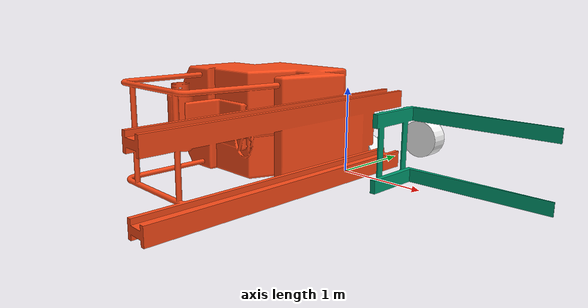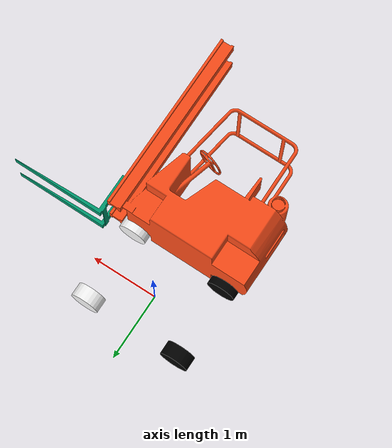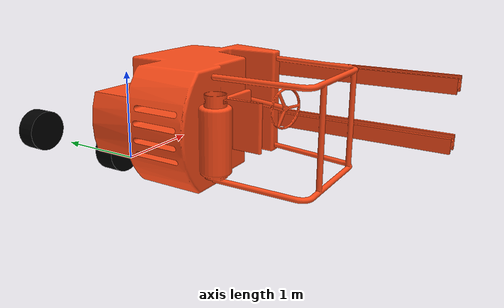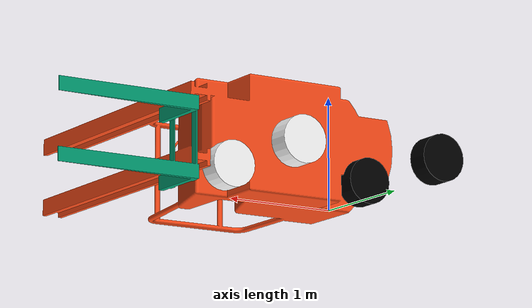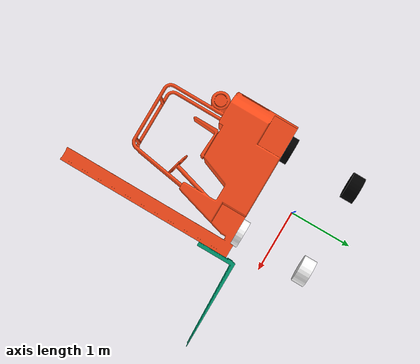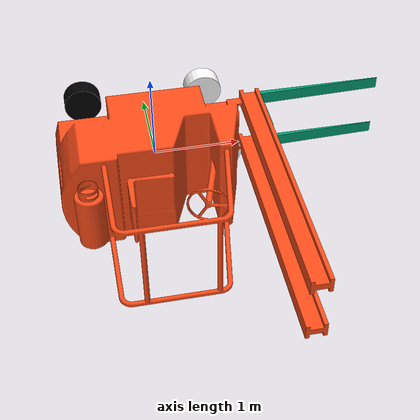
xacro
<?xml version="1.0"?>
<robot xmlns:xacro="http://www.ros.org/wiki/xacro">

    <xacro:include filename="forklift_robot_constants.xacro" />

    <!--######################### Base link ##################################### -->

    <link name="base_link">
        <visual>
        <origin xyz="-1.0795 -0.5334 0" rpy="0 0 0"/>
        <geometry>
            <mesh filename="$(find forklift_robot)/description/meshes/base_link.dae" />
        </geometry>
        <material name="orange">
        </material>
        </visual>

        <collision>
        <origin xyz="0 0 0" rpy="0 0 1.3716" /> <!-- 1.3716  make this the last digit if using mesh-->
        <geometry>
          <mesh filename="$(find forklift_robot)/description/meshes/base_link.dae" />
        </geometry>
        </collision>

        <inertial>
        <mass value="500"/>
        <inertia ixx="206" ixy="0" ixz="-23" iyy="389" iyz="0" izz="316"/>
        </inertial>

    </link>

    <gazebo reference="base_link">
        <material>Gazebo/Yellow</material>
    </gazebo>

    <!-- ######################### Base Footprint ##################################### -->
    <link name="base_footprint" />

    <!-- ######################### Base joint ##################################### -->
    <joint name="base_joint" type="fixed">
        <parent link="base_footprint"/>
        <child link="base_link" />
        <origin xyz="0.0 0.0 ${(wheel_radius+wheel_zoff)}" rpy="0 0 0"/> <!-- ${(wheel_radius+wheel_zoff)} switch the last digit to this if using meshes -->
    </joint>

    <!-- #################### Fork ########################## -->
      <link name="fork">
    <visual>
      <geometry>
        <mesh filename="$(find forklift_robot)/description/meshes/fork.dae"/>
      </geometry>
    </visual>
    <collision>
      <geometry>
        <mesh filename="$(find forklift_robot)/description/meshes/fork.dae"/>
      </geometry>
    </collision>
    <inertial>
      <mass value="10"/>
      <inertia ixx="0.2" ixy="0" ixz="0" iyy="0.3" iyz="0" izz="0.4"/>
    </inertial>
  </link>

  <joint name="base_to_fork" type="prismatic">
    <parent link="base_link"/>
    <child link="fork"/>
    <limit
      lower="0"
      upper="2"
      velocity="0.1"
      effort="100"
    />
    <origin xyz="1.0795 -0.3686 0.0"/>
    <axis xyz="0 0 1"/>
  </joint>

    <!-- ######################### Left side wheels ##################################### -->
    <xacro:wheel prefix="drivewhl_fl" x_reflect="1" y_reflect="1" />

    <xacro:steerable_wheel prefix="drivewhl_l" x="-0.7502" y="0.5684" z="0.2032"/>

    <joint name="drivewhl_fl_joint" type="continuous">
        <parent link="base_link"/>
        <child link="drivewhl_fl_link"/>
        <limit
        velocity="10"
        effort="1000"
        />
        <origin xyz="0.6722 0.5684 0.2032"/>
        <axis xyz="0 1 0"/>
    </joint>

    <!-- ######################### Right side wheels #################################### -->
    <xacro:wheel prefix="drivewhl_fr" x_reflect="1" y_reflect="-1" />

    <xacro:steerable_wheel prefix="drivewhl_r" x="-0.7502" y="-0.5684" z="0.2032"/>

    <joint name="drivewhl_fr_joint" type="continuous">
        <parent link="base_link"/>
        <child link="drivewhl_fr_link"/>
        <limit
        velocity="10"
        effort="1000"
        />
        <origin xyz="0.6722 -0.5684 0.2032"/>
        <axis xyz="0 1 0"/>
    </joint>

</robot>

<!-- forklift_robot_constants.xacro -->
<robot xmlns:xacro="http://www.ros.org/wiki/xacro">

    <!-- ######################## properties ############################ -->

    <!-- THESE ARE WRONG -->
    <xacro:property name="base_width" value="1.0668"/>
    <xacro:property name="base_length" value="2.159"/>
    <xacro:property name="base_height" value="2.7432"/>

    <!-- ####################### colors! ################### -->
    <material name="white">
        <color rgba="1 1 1 1"/>
    </material>

    <material name="black">
        <color rgba="0 0 0 1"/>
    </material>

    <material name="orange">
        <color rgba="1 0.3 0.1 1"/>
    </material>

    <material name="blue">
        <color rgba="0.2 0.2 1 1"/>
    </material>

    <!-- ############################# WHEEL STUFF ########################################### -->

    <xacro:property name="wheel_radius" value="0.21"/>
    <xacro:property name="wheel_width" value="0.2"/>

    <xacro:macro name="wheel" params="prefix x_reflect y_reflect">
      <link name="${prefix}_link">
        <visual>
          <origin xyz="0 0 0" rpy="1.5707963267949 0 0"/>
          <geometry>
              <cylinder radius="${wheel_radius}" length="${wheel_width}"/>
          </geometry>
          <material name="White">
            <color rgba="${255/255} ${255/255} ${255/255} 1.0"/>
          </material>
        </visual>

        <collision>
          <origin xyz="0 0 0" rpy="${pi/2} 0 0"/>
          <geometry>
            <cylinder radius="${wheel_radius}" length="${wheel_width}"/>
          </geometry>
        </collision>

        <xacro:cylinder_inertia m="5.5" r="${wheel_radius}" h="${wheel_width}"/>

      </link>

      <!-- Connect the wheels to the base_link at the appropriate location, and
          define a continuous joint to allow the wheels to freely rotate about
          an axis -->
    </xacro:macro>

    <!-- <><><><> STEERABLE WHEELS <><><><> -->

    <xacro:macro name="steerable_wheel" params="prefix x y z">
        <link name="${prefix}_wheel_link">
            <visual>
                <origin xyz="0 0 0" rpy="1.5707963267949 0 0"/>
                <geometry>
                    <cylinder radius="${wheel_radius}" length="${wheel_width}"/>
                </geometry>
                <material name="black"/>
            </visual>
            <collision>
              <origin xyz="0 0 0" rpy="${pi/2} 0 0"/>
              <geometry>
                  <cylinder radius="${wheel_radius}" length="${wheel_width}"/>
              </geometry>
            </collision>
            <inertial>
                <mass value="5"/>
                <inertia ixx="0.1" ixy="0" ixz="0" iyy="0.1" iyz="0" izz="0.1"/>
            </inertial>
        </link>

         <!-- Steering Joint -->
        <joint name="${prefix}_wheel_steering_joint" type="revolute">
            <parent link="base_link"/>
            <child link="${prefix}_wheel_link"/>
            <origin xyz="${x} ${y} ${z}" rpy="0 0 0"/>
            <axis xyz="0 0 1"/>
            <limit lower="-0.7854" upper="0.7854" effort="100" velocity="0.5"/>
        </joint>
    </xacro:macro>

    <!-- x-axis points forward, y-axis points to left, z-axis points upwards -->
    <!-- Define the gap between the wheel and chassis along y-axis in meters -->
    <xacro:property name="wheel_ygap" value="0.035"/>

    <!-- Position the wheels along the z-axis -->
    <xacro:property name="wheel_zoff" value="0.02"/>

    <!-- Position the wheels along the x-axis -->
    <xacro:property name="wheel_xoff" value="0.421"/>

    <!-- Position the caster wheel along the x-axis -->
    <xacro:property name="caster_xoff" value="0.217"/>

    <!-- ##################### intertial property macros ######################################## -->
    <xacro:macro name="box_inertia" params="m w h d">
      <inertial>
        <origin xyz="0 0 0" rpy="${pi/2} 0 ${pi/2}"/>
        <mass value="${m}"/>
        <inertia ixx="${(m/12) * (h*h + d*d)}" ixy="0.0" ixz="0.0" iyy="${(m/12) * (w*w + d*d)}" iyz="0.0" izz="${(m/12) * (w*w + h*h)}"/>
      </inertial>
    </xacro:macro>

    <xacro:macro name="cylinder_inertia" params="m r h">
      <inertial>
        <origin xyz="0 0 0" rpy="${pi/2} 0 0" />
        <mass value="${m}"/>
        <inertia ixx="${(m/12) * (3*r*r + h*h)}" ixy = "0" ixz = "0" iyy="${(m/12) * (3*r*r + h*h)}" iyz = "0" izz="${(m/2) * (r*r)}"/>
      </inertial>
    </xacro:macro>

    <xacro:macro name="sphere_inertia" params="m r">
      <inertial>
        <mass value="${m}"/>
        <inertia ixx="${(2/5) * m * (r*r)}" ixy="0.0" ixz="0.0" iyy="${(2/5) * m * (r*r)}" iyz="0.0" izz="${(2/5) * m * (r*r)}"/>
      </inertial>
    </xacro:macro>

</robot>
